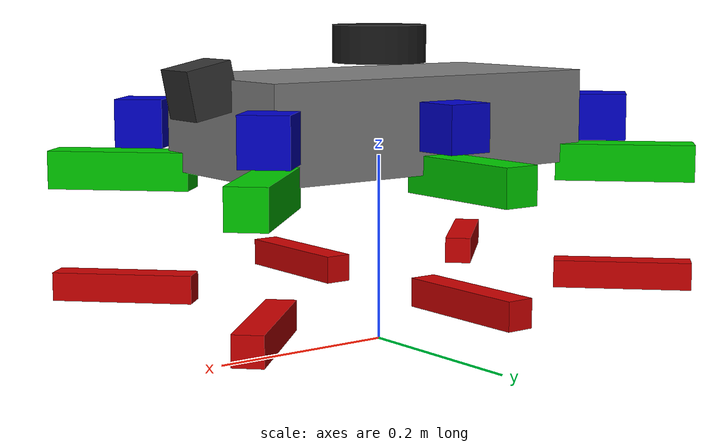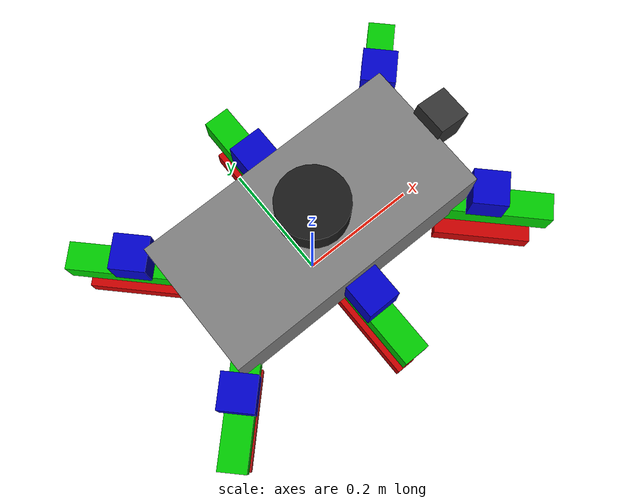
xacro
<?xml version="1.0"?>
<robot xmlns:xacro="http://www.ros.org/wiki/xacro" name="quadbot">

  <xacro:property name="body_x" value="0.4" />
  <xacro:property name="body_y" value="0.2" />
  <xacro:property name="body_z" value="0.1" />
  <xacro:property name="body_mass" value="8.0" />

  <xacro:property name="coxa_l" value="0.05" />
  <xacro:property name="femur_l" value="${2 * coxa_l}" />
  <xacro:property name="tibia_l" value="${3 * coxa_l}" />
  <xacro:property name="leg_mass" value="1.0" />

  <!-- Base Link -->
  <link name="base_footprint" />
  <joint name="base_joint" type="fixed">
    <parent link="base_footprint" />
    <child link="base_link" />
    <origin xyz="0 0 0.24" rpy="0 0 0" />
  </joint>

  <link name="base_link">
    <visual>
      <geometry><mesh filename="package://quadbot/meshes/body.stl" /></geometry>
      <material name="gray"><color rgba="0.5 0.5 0.5 1.0"/></material>
    </visual>
    <collision>
      <geometry><box size="${body_x} ${body_y} ${body_z}" /></geometry>
    </collision>
    <inertial>
      <mass value="${body_mass}" />
      <inertia ixx="${body_mass*(body_y*body_y+body_z*body_z)/12.0}" ixy="0" ixz="0" iyy="${body_mass*(body_x*body_x+body_z*body_z)/12.0}" iyz="0" izz="${body_mass*(body_x*body_x+body_y*body_y)/12.0}" />
    </inertial>
  </link>

  <!-- Macro for Leg -->
  <xacro:macro name="leg" params="prefix pos_x pos_y yaw">
    <link name="${prefix}_coxa">
      <visual>
        <origin xyz="${coxa_l/2.0} 0 0" rpy="0 0 0"/>
        <geometry><mesh filename="package://quadbot/meshes/coxa.stl" /></geometry>
        <material name="blue"><color rgba="0 0 0.8 1.0"/></material>
      </visual>
      <collision>
        <origin xyz="${coxa_l/2.0} 0 0" rpy="0 0 0"/><geometry><box size="${coxa_l} 0.04 0.04" /></geometry>
      </collision>
      <inertial>
        <mass value="${leg_mass}" /><inertia ixx="0.01" ixy="0" ixz="0" iyy="0.01" iyz="0" izz="0.01" />
      </inertial>
    </link>

    <joint name="${prefix}_coxa_joint" type="revolute">
      <parent link="base_link" />
      <child link="${prefix}_coxa" />
      <origin xyz="${pos_x} ${pos_y} 0" rpy="0 0 ${yaw}" />
      <axis xyz="0 0 1" />
      <limit lower="-1.57" upper="1.57" effort="20.0" velocity="2.0" />
    </joint>

    <link name="${prefix}_femur">
      <visual>
        <origin xyz="0 0 ${-femur_l/2.0}" rpy="0 0 0"/>
        <geometry><mesh filename="package://quadbot/meshes/femur.stl" /></geometry>
        <material name="green"><color rgba="0 0.8 0 1.0"/></material>
      </visual>
      <collision>
        <origin xyz="0 0 ${-femur_l/2.0}" rpy="0 0 0"/><geometry><box size="0.03 0.03 ${femur_l}" /></geometry>
      </collision>
      <inertial>
        <mass value="${leg_mass}" /><inertia ixx="0.01" ixy="0" ixz="0" iyy="0.01" iyz="0" izz="0.01" />
      </inertial>
    </link>

    <joint name="${prefix}_femur_joint" type="revolute">
      <parent link="${prefix}_coxa" />
      <child link="${prefix}_femur" />
      <origin xyz="${coxa_l} 0 0" rpy="0 0 0" />
      <axis xyz="0 1 0" />
      <limit lower="-1.57" upper="1.57" effort="20.0" velocity="2.0" />
    </joint>

    <link name="${prefix}_tibia">
      <visual>
        <origin xyz="0 0 ${-tibia_l/2.0}" rpy="0 0 0"/>
        <geometry><mesh filename="package://quadbot/meshes/tibia.stl" /></geometry>
        <material name="red"><color rgba="0.8 0 0 1.0"/></material>
      </visual>
      <collision>
        <origin xyz="0 0 ${-tibia_l/2.0}" rpy="0 0 0"/><geometry><box size="0.02 0.02 ${tibia_l}" /></geometry>
      </collision>
      <inertial>
        <mass value="${leg_mass}" /><inertia ixx="0.01" ixy="0" ixz="0" iyy="0.01" iyz="0" izz="0.01" />
      </inertial>
    </link>

    <joint name="${prefix}_tibia_joint" type="revolute">
      <parent link="${prefix}_femur" />
      <child link="${prefix}_tibia" />
      <origin xyz="0 0 ${-femur_l}" rpy="0 0 0" />
      <axis xyz="0 1 0" />
      <limit lower="-1.57" upper="1.57" effort="20.0" velocity="2.0" />
    </joint>

    <!-- Remove ROS 1 transmissions as they are redundant in ROS 2 and may cause parser issues -->
  </xacro:macro>

  <!-- Instantiate 6 Legs with proper angular placement -->
  <!-- Right side: uses negative yaw angles -->
  <xacro:leg prefix="rf" pos_x="${body_x/2.0}"  pos_y="${-body_y/2.0}" yaw="-0.785"/>
  <xacro:leg prefix="rm" pos_x="0.0"            pos_y="${-body_y/2.0}" yaw="-1.571"/>
  <xacro:leg prefix="rb" pos_x="${-body_x/2.0}" pos_y="${-body_y/2.0}" yaw="-2.356"/>

  <!-- Left side: uses positive yaw angles -->
  <xacro:leg prefix="lf" pos_x="${body_x/2.0}"  pos_y="${body_y/2.0}"  yaw="0.785"/>
  <xacro:leg prefix="lm" pos_x="0.0"            pos_y="${body_y/2.0}"  yaw="1.571"/>
  <xacro:leg prefix="lb" pos_x="${-body_x/2.0}" pos_y="${body_y/2.0}"  yaw="2.356"/>

  <!-- ros2_control -->
  <ros2_control name="GazeboSystem" type="system">
    <hardware>
      <plugin>gazebo_ros2_control/GazeboSystem</plugin>
    </hardware>

    <joint name="rf_coxa_joint">
      <command_interface name="position"><param name="min">-1.57</param><param name="max">1.57</param></command_interface>
      <state_interface name="position"/><state_interface name="velocity"/>
    </joint>
    <joint name="rf_femur_joint">
      <command_interface name="position"><param name="min">-1.57</param><param name="max">1.57</param></command_interface>
      <state_interface name="position"/><state_interface name="velocity"/>
    </joint>
    <joint name="rf_tibia_joint">
      <command_interface name="position"><param name="min">-1.57</param><param name="max">1.57</param></command_interface>
      <state_interface name="position"/><state_interface name="velocity"/>
    </joint>

    <joint name="rm_coxa_joint">
      <command_interface name="position"><param name="min">-1.57</param><param name="max">1.57</param></command_interface>
      <state_interface name="position"/><state_interface name="velocity"/>
    </joint>
    <joint name="rm_femur_joint">
      <command_interface name="position"><param name="min">-1.57</param><param name="max">1.57</param></command_interface>
      <state_interface name="position"/><state_interface name="velocity"/>
    </joint>
    <joint name="rm_tibia_joint">
      <command_interface name="position"><param name="min">-1.57</param><param name="max">1.57</param></command_interface>
      <state_interface name="position"/><state_interface name="velocity"/>
    </joint>

    <joint name="rb_coxa_joint">
      <command_interface name="position"><param name="min">-1.57</param><param name="max">1.57</param></command_interface>
      <state_interface name="position"/><state_interface name="velocity"/>
    </joint>
    <joint name="rb_femur_joint">
      <command_interface name="position"><param name="min">-1.57</param><param name="max">1.57</param></command_interface>
      <state_interface name="position"/><state_interface name="velocity"/>
    </joint>
    <joint name="rb_tibia_joint">
      <command_interface name="position"><param name="min">-1.57</param><param name="max">1.57</param></command_interface>
      <state_interface name="position"/><state_interface name="velocity"/>
    </joint>

    <joint name="lf_coxa_joint">
      <command_interface name="position"><param name="min">-1.57</param><param name="max">1.57</param></command_interface>
      <state_interface name="position"/><state_interface name="velocity"/>
    </joint>
    <joint name="lf_femur_joint">
      <command_interface name="position"><param name="min">-1.57</param><param name="max">1.57</param></command_interface>
      <state_interface name="position"/><state_interface name="velocity"/>
    </joint>
    <joint name="lf_tibia_joint">
      <command_interface name="position"><param name="min">-1.57</param><param name="max">1.57</param></command_interface>
      <state_interface name="position"/><state_interface name="velocity"/>
    </joint>

    <joint name="lm_coxa_joint">
      <command_interface name="position"><param name="min">-1.57</param><param name="max">1.57</param></command_interface>
      <state_interface name="position"/><state_interface name="velocity"/>
    </joint>
    <joint name="lm_femur_joint">
      <command_interface name="position"><param name="min">-1.57</param><param name="max">1.57</param></command_interface>
      <state_interface name="position"/><state_interface name="velocity"/>
    </joint>
    <joint name="lm_tibia_joint">
      <command_interface name="position"><param name="min">-1.57</param><param name="max">1.57</param></command_interface>
      <state_interface name="position"/><state_interface name="velocity"/>
    </joint>

    <joint name="lb_coxa_joint">
      <command_interface name="position"><param name="min">-1.57</param><param name="max">1.57</param></command_interface>
      <state_interface name="position"/><state_interface name="velocity"/>
    </joint>
    <joint name="lb_femur_joint">
      <command_interface name="position"><param name="min">-1.57</param><param name="max">1.57</param></command_interface>
      <state_interface name="position"/><state_interface name="velocity"/>
    </joint>
    <joint name="lb_tibia_joint">
      <command_interface name="position"><param name="min">-1.57</param><param name="max">1.57</param></command_interface>
      <state_interface name="position"/><state_interface name="velocity"/>
    </joint>
  </ros2_control>

  <xacro:arg name="controllers_yaml" default="" />
  <gazebo>
    <plugin name="gazebo_ros2_control" filename="libgazebo_ros2_control.so">
      <parameters>$(arg controllers_yaml)</parameters>
      <robot_param>robot_description</robot_param>
      <robot_param_node>robot_state_publisher</robot_param_node>
    </plugin>
  </gazebo>

  <!-- ===================== LIDAR ===================== -->
  <link name="lidar_link">
    <visual>
      <geometry><cylinder radius="0.05" length="0.04"/></geometry>
      <material name="black"><color rgba="0.1 0.1 0.1 1"/></material>
    </visual>
    <collision>
      <geometry><cylinder radius="0.05" length="0.04"/></geometry>
    </collision>
    <inertial>
      <mass value="0.1"/>
      <inertia ixx="0.001" ixy="0" ixz="0" iyy="0.001" iyz="0" izz="0.001"/>
    </inertial>
  </link>
  <joint name="lidar_joint" type="fixed">
    <parent link="base_link"/>
    <child link="lidar_link"/>
    <origin xyz="0 0 0.08" rpy="0 0 0"/>
  </joint>
  <gazebo reference="lidar_link">
    <sensor name="lidar" type="ray">
      <always_on>true</always_on>
      <visualize>true</visualize>
      <update_rate>10</update_rate>
      <ray>
        <scan>
          <horizontal>
            <samples>360</samples>
            <resolution>1</resolution>
            <min_angle>-3.14159</min_angle>
            <max_angle>3.14159</max_angle>
          </horizontal>
        </scan>
        <range>
          <min>0.3</min>
          <max>5.0</max>
          <resolution>0.01</resolution>
        </range>
        <noise>
          <type>gaussian</type>
          <mean>0.0</mean>
          <stddev>0.01</stddev>
        </noise>
      </ray>
      <plugin name="quadbot_lidar" filename="libgazebo_ros_ray_sensor.so">
        <ros>
          <remapping>~/out:=scan</remapping>
        </ros>
        <output_type>sensor_msgs/LaserScan</output_type>
        <frame_name>lidar_link</frame_name>
      </plugin>
    </sensor>
  </gazebo>

  <!-- ===================== CAMERA ===================== -->
  <link name="camera_link">
    <visual>
      <geometry><box size="0.05 0.05 0.05"/></geometry>
      <material name="darkgray"><color rgba="0.2 0.2 0.2 1"/></material>
    </visual>
    <collision>
      <geometry><box size="0.05 0.05 0.05"/></geometry>
    </collision>
    <inertial>
      <mass value="0.05"/>
      <inertia ixx="0.0001" ixy="0" ixz="0" iyy="0.0001" iyz="0" izz="0.0001"/>
    </inertial>
  </link>
  <joint name="camera_joint" type="fixed">
    <parent link="base_link"/>
    <child link="camera_link"/>
    <origin xyz="0.22 0 0.04" rpy="0 0.2 0"/>
  </joint>
  <gazebo reference="camera_link">
    <sensor name="front_camera" type="camera">
      <always_on>true</always_on>
      <visualize>true</visualize>
      <update_rate>30</update_rate>
      <camera>
        <horizontal_fov>1.3962634</horizontal_fov>
        <image>
          <width>640</width>
          <height>480</height>
          <format>R8G8B8</format>
        </image>
        <clip>
          <near>0.02</near>
          <far>300</far>
        </clip>
        <noise>
          <type>gaussian</type>
          <mean>0.0</mean>
          <stddev>0.007</stddev>
        </noise>
      </camera>
      <plugin name="quadbot_camera" filename="libgazebo_ros_camera.so">
        <frame_name>camera_link</frame_name>
        <ros>
          <remapping>image_raw:=camera/image_raw</remapping>
          <remapping>camera_info:=camera/camera_info</remapping>
        </ros>
      </plugin>
    </sensor>
  </gazebo>

  <gazebo reference="lb_tibia"><mu1>10.0</mu1><mu2>10.0</mu2></gazebo>
  <gazebo reference="lm_tibia"><mu1>10.0</mu1><mu2>10.0</mu2></gazebo>
  <gazebo reference="lf_tibia"><mu1>10.0</mu1><mu2>10.0</mu2></gazebo>
  <gazebo reference="rb_tibia"><mu1>10.0</mu1><mu2>10.0</mu2></gazebo>
  <gazebo reference="rm_tibia"><mu1>10.0</mu1><mu2>10.0</mu2></gazebo>
  <gazebo reference="rf_tibia"><mu1>10.0</mu1><mu2>10.0</mu2></gazebo>

</robot>
